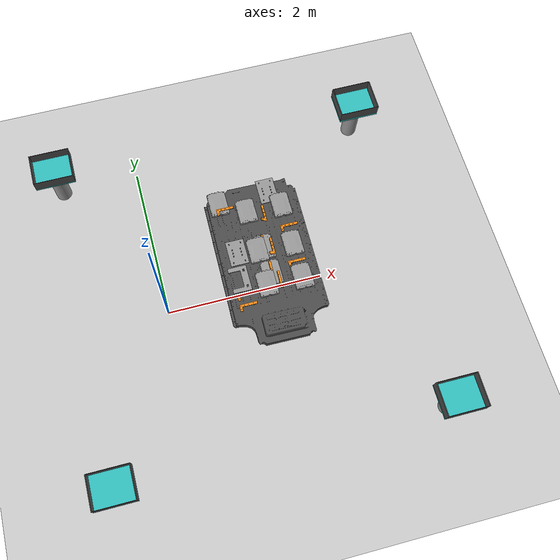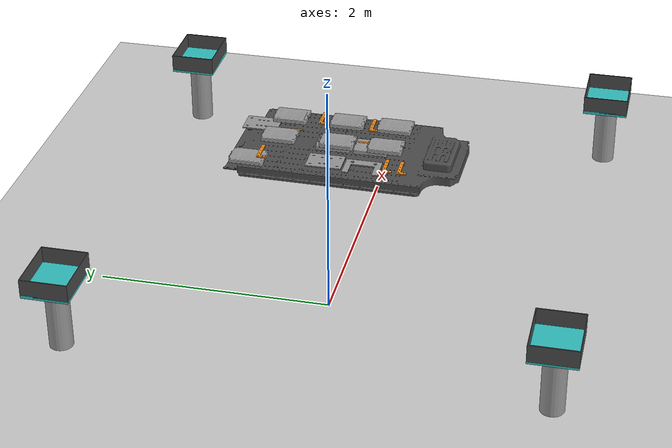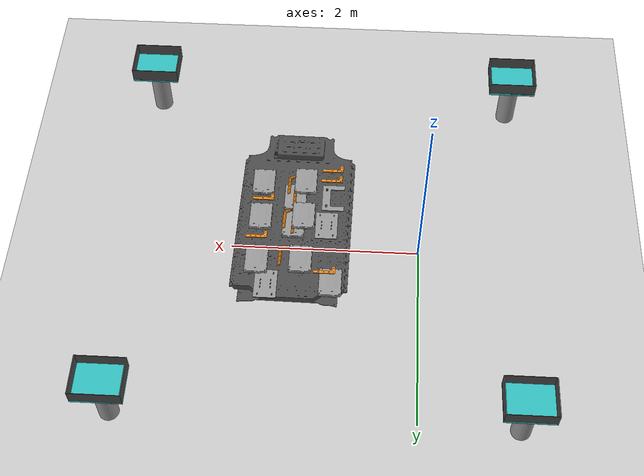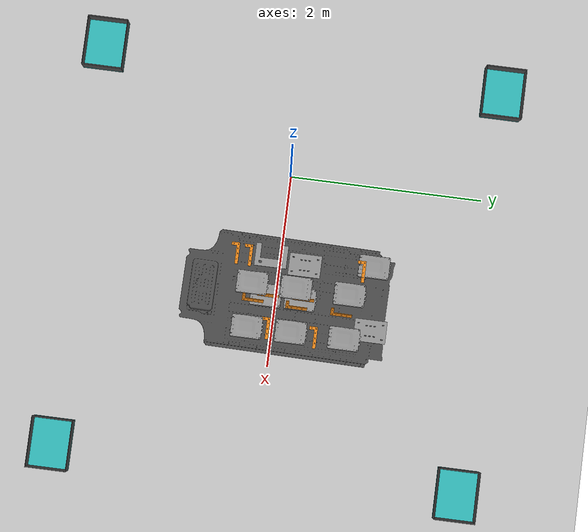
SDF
<sdf version="1.4">
 <world name="default">
  <scene><shadows>0</shadows></scene>
  <scene><shadows>false</shadows></scene>
  <include><uri>model://ground_plane</uri></include>
  <include><uri>model://sun</uri></include>
  <include>
   <static>true</static>
   <uri>model://tesla_battery_v2</uri>
   <name>tesla_battery</name>
   <pose>1.3 0.0 0.8 0 0 0</pose>
  </include>
  <include>
   <static>true</static>
   <uri>model://tesla_battery_support_v2</uri>
   <name>tesla_battery_support</name>
   <pose>1.3 0.0 0.25 0 0 0</pose>
  </include>
  <include><uri>model://table_bin</uri><name>bin_1</name><pose>-1.0 2.0 0 0 0 0</pose></include>
  <include><uri>model://table_bin</uri><name>bin_2</name><pose>-1.0 -2.0 0 0 0 0</pose></include>
  <include><uri>model://table_bin</uri><name>bin_3</name><pose>3.0 -2.0 0 0 0 0</pose></include>
  <include><uri>model://table_bin</uri><name>bin_4</name><pose>3.0 2.0 0 0 0 0</pose></include>
  <include>
   <static>false</static>
   <uri>model://leaf_cell</uri>
   <name>leaf6</name>
   <pose>1.63 0.72 .863 0 0 0.0</pose>
  </include>
  <include>
   <static>false</static>
   <uri>model://leaf_cell</uri>
   <name>leaf66</name>
   <pose>1.2 0.72 0.899 0 0 0.0</pose>
  </include>
  <include>
   <static>false</static>
   <uri>model://leaf_cell</uri>
   <name>leaf5</name>
   <pose>1.63 0.2 .863 0 0 0.0</pose>
  </include>
  <include>
   <static>false</static>
   <uri>model://leaf_cell</uri>
   <name>leaf55</name>
   <pose>1.2 0.2 0.899 0 0 0.0</pose>
  </include>
  <include>
   <static>false</static>
   <uri>model://leaf_cell</uri>
   <name>leaf4</name>
   <pose>1.63 -0.23 .863 0 0 0.0</pose>
  </include>
  <include>
   <static>false</static>
   <uri>model://leaf_cell</uri>
   <name>leaf44</name>
   <pose>1.2 -0.23 0.899 0 0 0.0</pose>
  </include>
  <include>
   <static>false</static>
   <uri>model://leaf_cell</uri>
   <name>leaf1</name>
   <pose>0.9 0.93 0.825 0 0 0.0</pose>
  </include>
  <include>
   <static>false</static>
   <uri>model://plate_b</uri>
   <name>plate_b_1</name>
   <pose>1.523 0.9613 0.812 0 0 0.0</pose>
  </include>
  <include>
   <static>false</static>
   <uri>model://leaf_cell</uri>
   <name>leaf2</name>
   <pose>1.3 0.253 0.814 0 0 0.0</pose>
  </include>
  <include>
   <static>false</static>
   <uri>model://plate_b</uri>
   <name>plate_b_1</name>
   <pose>0.968 0.253 0.82 0 0 0.0</pose>
  </include>
  <include>
   <static>false</static>
   <uri>model://leaf_cell</uri>
   <name>leaf3</name>
   <pose>1.3 -0.084 0.814 0 0 0.0</pose>
  </include>
  <include>
   <static>false</static>
   <uri>model://plate_a</uri>
   <name>plate_a_2</name>
   <pose>0.968 -0.084 0.83 0 0 0.0</pose>
  </include>
  <include>
   <static>false</static>
   <uri>model://bracket</uri>
   <name>bracket1</name>
   <pose>1.66 0.437 0.856 0 0 0</pose>
  </include>
  <include>
   <static>false</static>
   <uri>model://bracket</uri>
   <name>bracket2</name>
   <pose>1.3 0.284 0.856 -2.57199 -0.000671 1.55773</pose>
  </include>
  <include>
   <static>false</static>
   <uri>model://bracket</uri>
   <name>bracket3</name>
   <pose>1.30284 -0.060163 0.856 -2.57199 -0.000671 1.55773</pose>
  </include>
  <include>
   <static>false</static>
   <uri>model://bracket</uri>
   <name>bracket4</name>
   <pose>0.938 -0.415 0.856 0.0 0.0 0.0</pose>
  </include>
  <include>
   <static>false</static>
   <uri>model://bracket</uri>
   <name>bracket5</name>
   <pose>1.627 -0.03 0.856 0.0 0.0 0.0</pose>
  </include>
  <include>
   <static>false</static>
   <uri>model://bracket</uri>
   <name>bracket6</name>
   <pose>0.943 -0.285 0.856 0.0 0.0 0.0</pose>
  </include>
  <include>
   <static>false</static>
   <uri>model://bracket</uri>
   <name>bracket7</name>
   <pose>0.966 0.827 0.856 0.0 0.0 0.0</pose>
  </include>
  <include>
   <static>false</static>
   <uri>model://bracket</uri>
   <name>bracket8</name>
   <pose>1.40327 0.665681 0.856 -2.57199 -0.000671 1.55773</pose>
  </include>
  <include>
   <static>false</static>
   <uri>model://bracket</uri>
   <name>bracket9</name>
   <pose>1.39005 0.225178 0.856 -2.57199 -0.000671 1.55773</pose>
  </include>
  <include>
   <static>false</static>
   <uri>model://bracket</uri>
   <name>bracketten</name>
   <pose>1.36719 -0.20304 0.856 -2.57199 -0.000641 1.55773</pose>
  </include>
 </world>
</sdf>

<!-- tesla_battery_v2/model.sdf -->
<sdf version="1.5">
  <model name="tesla_battery_v2">
    <static>false</static>

    <link name="link0">

      <collision name="collision">
        <pose>0 0.15 -0.05445 0 0 0</pose>
        <geometry>
          <!-- was y=1.68 -->
          <box>
            <size>1.0 1.9 0.12</size>
          </box>
        </geometry>
        <surface>
          <friction>
            <ode>
              <mu>1.0</mu>
              <mu2>1.0</mu2>
            </ode>
          </friction>
        </surface>
      </collision>

      <visual name="visual">
        <geometry>
          <mesh>
            <uri>model://tesla_battery_v2/meshes/tesla_batteryv2.dae</uri>
          </mesh>
        </geometry>
        <material>
          <script>
            <uri>file://media/materials/scripts/gazebo.material</uri>
            <name>Gazebo/DarkGrey</name>
          </script>
        </material>
      </visual>

    </link>
  </model>
</sdf>

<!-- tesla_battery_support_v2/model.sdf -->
<sdf version="1.5">
  <model name="tesla_battery_support_v2">
    <static>false</static>

    <link name="link0">
      <collision name="collision">
        <geometry>
          <box>
              <!-- was y = 2.45-->
			      <size>0.7 2.0 0.5</size>
          </box>
        </geometry>
      </collision>
	</link>
  </model>
</sdf>

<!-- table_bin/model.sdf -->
<sdf version="1.5">

  <model name="table_bin">
    <static>true</static>

    <link name="column_link">
      <collision name="column">
        <pose>0 0 0.3 0 0 0</pose>
        <geometry>
          <box>
            <size>0.4 0.5 .6 </size>
          </box>
        </geometry>
        <surface>
          <friction>
            <ode>
              <mu>0.6</mu>
              <mu2>0.6</mu2>
            </ode>
          </friction>
        </surface>
      </collision>
      <visual name="column">
        <pose>0 0 0.3 0 0 0</pose>
        <geometry>
          <cylinder>
            <radius>0.1</radius>
            <length>0.6</length>
          </cylinder>
        </geometry>
        <material>
          <script>
            <uri>file://media/materials/scripts/gazebo.material</uri>
            <name>PR2/Grey4</name>
          </script>
        </material>
      </visual>
    </link>

    <joint name="column2table" type="revolute">
      <parent>column_link</parent>
      <child>table_link</child>
      <pose>0 0 0.3 0 0 0</pose>
    </joint>

    <link name="table_link">

      <collision name="surface">
        <pose>0 0 0.6 0 0 0</pose>
        <geometry>
          <box>
            <size>0.5 0.4 0.03</size>
          </box>
        </geometry>
        <surface>
          <friction>
            <ode>
              <mu>0.6</mu>
              <mu2>0.6</mu2>
            </ode>
          </friction>
        </surface>
      </collision>
      <visual name="surface">
        <pose>0 0 0.6 0 0 0</pose>
        <geometry>
          <box>
            <size>0.5 0.4 0.03</size>
          </box>
        </geometry>
        <material>
          <script>
            <uri>file://media/materials/scripts/gazebo.material</uri>
            <name>Gazebo/Turquoise </name>
          </script>
        </material>
      </visual>
    </link>

    <joint name="table2bin" type="prismatic">
      <parent>table_link</parent>
      <child>bin_link</child>
      <pose>0 0 1 0 0 0</pose>
      <axis>
        <xyz>0 0 1</xyz>
      </axis>
    </joint>

    <link name="bin_link">

      <collision name="bin">
        <pose>0 0 0.68 0 0 0</pose>

        <geometry>
          <mesh>
            <uri>model://table_bin/meshes/big_bin.stl</uri>
          </mesh>
        </geometry>
      </collision>

      <visual name="bin">
        <pose>0 0 0.68 0 0 0</pose>

        <geometry>
          <mesh>
            <uri>model://table_bin/meshes/big_bin.dae</uri>
          </mesh>
        </geometry>

        <material>
          <script>
            <uri>file://media/materials/scripts/gazebo.material</uri>
            <name>Gazebo/DarkGrey </name>
          </script>
        </material>

      </visual>
    </link>

  </model>

</sdf>

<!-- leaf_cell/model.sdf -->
<sdf version="1.5">
  <model name="leaf_cell">
    <static>false</static>
    <link name="leaf_cell_link">
      <collision name="collision">
        <geometry>
          <box>
            <size> 0.2228 0.3149 0.035</size>
          </box>
        </geometry>
        <surface>
          <friction>
            <ode>
              <mu>0.99</mu>
              <mu2>0.99</mu2>
            </ode>
          </friction>
        </surface>
      </collision>

      <visual name="visual">
        <geometry>
          <mesh>
            <uri>model://leaf_cell/meshes/leaf_cell.dae</uri>
          </mesh>
        </geometry>
        <material>
          <script>
            <uri>file://media/materials/scripts/gazebo.material</uri>
            <name>Gazebo/Grey</name>
          </script>
        </material>
      </visual>

      <inertial>
        <pose>0.0 0.0 0.0 0.0 0.0 -1.5707</pose>
        <mass>0.1</mass>
        <inertia>
          <ixx>0.000539835</ixx>
          <iyy>0.00075853</iyy>
          <izz>0.0012813</izz>
          <ixy>0.0</ixy>
          <ixz>0.0</ixz>
          <iyz>0.0</iyz>
        </inertia>
      </inertial>

    </link>

  </model>
</sdf>

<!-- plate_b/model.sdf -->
<sdf version="1.5">
  <model name="plate_b">

    <static>false</static>

    <link name="link0">
      <collision name="collision">
        <geometry>
          <!-- OR -->
          <mesh>
            <uri>model://plate_b/meshes/plate_b.stl</uri>
          </mesh>
        </geometry>
        <surface>
          <friction>
            <ode>
              <mu>0.99</mu>
              <mu2>0.99</mu2>
            </ode>
          </friction>
        </surface>
      </collision>

      <visual name="visual">
        <geometry>
          <!-- OR -->
          <mesh>
            <uri>model://plate_b/meshes/plate_b.dae</uri>
          </mesh>
        </geometry>
        <!-- OPTIONAL -->
        <material>
          <script>
            <uri>file://media/materials/scripts/gazebo.material</uri>
            <name>Gazebo/Grey</name>
          </script>
        </material>
      </visual>

      <inertial>
        <mass>0.10</mass>
        <inertia>
          <ixx>0.0003858</ixx>
          <ixy>0.0</ixy>
          <ixz>0.0</ixz>
          <iyy>0.0003858</iyy>
          <iyz>0.0</iyz>
          <izz>0.0006050</izz>
        </inertia>
      </inertial>

    </link>

  </model>
</sdf>

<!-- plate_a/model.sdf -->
<sdf version="1.5">
	<model name="plate_a">

		<static>false</static>

		<link name="link0">
			<collision name="collision">
				<pose> 0.0 0.0 0.0 0.0 0.0 0.0</pose>
				<geometry>
					<!-- OR -->
					<mesh>
						<uri>model://plate_a/meshes/plate_a_centroid.stl</uri>
					</mesh>
				</geometry>
				<surface>
					<friction>
						<ode>
							<mu>0.99</mu>
							<mu2>0.99</mu2>
						</ode>
					</friction>
				</surface>
			</collision>

			<visual name="visual">
				<geometry>
					<!-- OR -->
					<mesh>
						<uri>model://plate_a/meshes/plate_a_centroid.dae</uri>
					</mesh>
				</geometry>
				<!-- OPTIONAL -->
				<material>
					<script>
						<uri>file://media/materials/scripts/gazebo.material</uri>
						<name>PR2/Grey1</name>
					</script>
				</material>
			</visual>

			<inertial>
				<mass>0.1</mass>
				<inertia>
					<ixx>0.00082718</ixx>
					<ixy>0.0</ixy>
					<ixz>0.0</ixz>
					<iyy>0.00043403</iyy>
					<iyz>0.0</iyz>
					<izz>0.00125955</izz>
				</inertia>
			</inertial>

		</link>

	</model>
</sdf>

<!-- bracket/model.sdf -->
<sdf version="1.5">
  <model name="bracket">
    <static>false</static>

    <link name="link0">
      <collision name="collision">
        <pose>0.000 0 0.000 0 0 0</pose>
        <geometry>
          <box>
            <size> 0.18 0.07 0.01</size>
          </box>
          <!-- OR -->
        </geometry>
        <surface>
          <friction>
            <ode>
              <mu>0.99</mu>
              <mu2>0.99</mu2>
            </ode>
          </friction>
        </surface>
      </collision>

      <visual name="visual">
        <geometry>
          <mesh>
            <uri>model://bracket/meshes/bracket_modified.dae</uri>
          </mesh>
        </geometry>
        <!-- OPTIONAL -->
        <material>
          <script>
            <uri>file://media/materials/scripts/gazebo.material</uri>
            <name>Gazebo/Orange</name>
          </script>
        </material>
      </visual>

      <inertial>
        <pose>0.0 0.0 0.0 0 0</pose>

        <mass>0.10</mass>
        <inertia>
            <ixx>0.0000417</ixx>
            <ixy>0.0</ixy>
            <ixz>0.0</ixz>
            <iyy>0.0002708</iyy>
            <iyz>0.0</iyz>
            <izz>0.0003108</izz>
        </inertia>
      </inertial>

    </link>

  </model>
</sdf>
